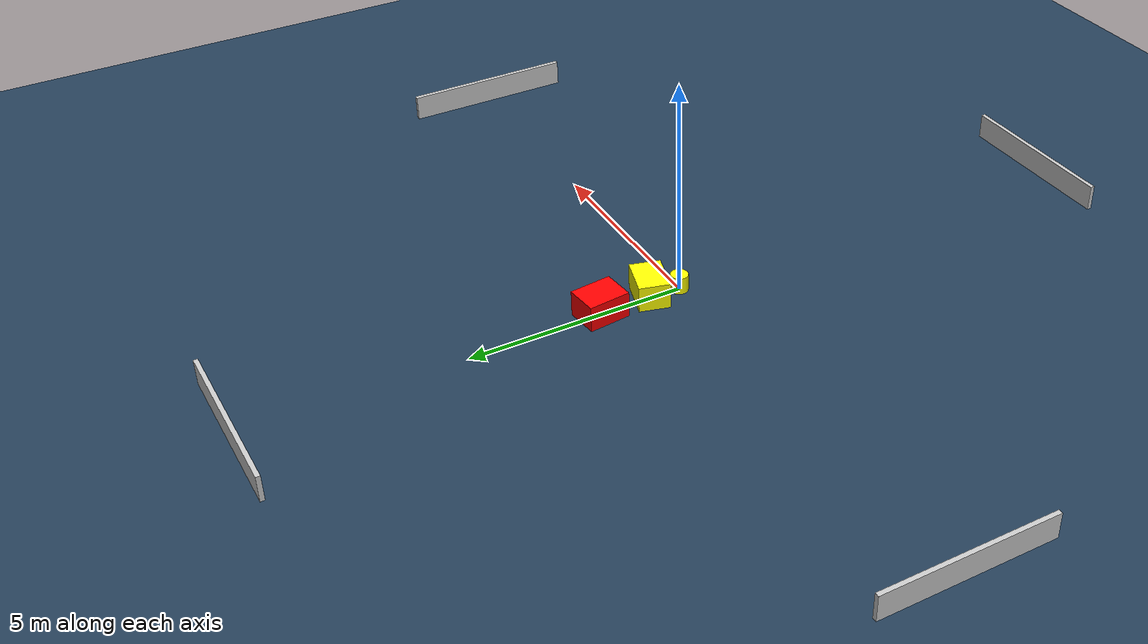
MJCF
<?xml version="1.0" ?>
<mujoco model="generated_environment">
  <option timestep="0.01" integrator="RK4" cone="elliptic"/>
  <default>
    <geom density="1"/>
  </default>
  <asset>
    <texture builtin="gradient" height="3072" name="skybox" rgb1="0.3 0.5 0.7" rgb2="0 0 0" type="skybox" width="512"/>
    <texture builtin="checker" height="300" name="groundplane" rgb1="0.2 0.3 0.4" rgb2="0.1 0.2 0.3" type="2d" width="300"/>
    <material name="groundplane" reflectance="0.2" texrepeat="5 5" texture="groundplane"/>
  </asset>
  <worldbody>
    <light dir="0 0 -1" directional="true" pos="0 0 1.5"/>
    <geom condim="3" friction="0.5 0.005 0.001" material="groundplane" name="floor" pos="0 0 0" size="0 0 0.05" type="plane"/>
    <body name="walls">
      <geom name="wall_1" condim="4" pos="-10.0 0.0 0.3" rgba="0.800000011920929 0.800000011920929 0.800000011920929 1.0" size="0.05 2.0 0.3" type="box"/>
      <geom name="wall_2" condim="4" pos="10.0 0.0 0.3" rgba="0.800000011920929 0.800000011920929 0.800000011920929 1.0" size="0.05 2.0 0.3" type="box"/>
      <geom name="wall_3" condim="4" pos="0.0 -10.0 0.3" rgba="0.800000011920929 0.800000011920929 0.800000011920929 1.0" size="2.0 0.05 0.3" type="box"/>
      <geom name="wall_4" condim="4" pos="0.0 10.0 0.3" rgba="0.800000011920929 0.800000011920929 0.800000011920929 1.0" size="2.0 0.05 0.3" type="box"/>
    </body>
    <body name="robot">
      <joint name="joint_x" type="slide" pos="0 0 0" axis="1 0 0"/>
      <joint name="joint_y" type="slide" pos="0 0 0" axis="0 1 0"/>
      <geom name="robot" type="cylinder" pos="0.0 0.0 0.2" size="0.2 0.2 0.0" mass="5.0" friction="1.0 0.005 0.0001" condim="4" rgba="1.0 1.0 0.0 1.0"/>
    </body>
    <body name="obstacle_1_movable">
      <geom name="obstacle_1_movable" condim="4" pos="0.059690773735811005 0.7047995493426475 0.3" euler="0 0 254.45393549664297" friction="0.0 0.005 0.001" rgba="1.0 1.0 0.0 1.0" size="0.3531981453756863 0.4753150302335835 0.3" type="box" mass="0.1"/>
      <joint type="free"/>
    </body>
    <body name="obstacle_2_static">
      <geom name="obstacle_2_static" condim="4" pos="0.008207439099814981 1.9380574828540733 0.3" euler="0 0 6.237008837347147" friction="0.0 0.005 0.001" rgba="1.0 0.0 0.0 1.0" size="0.3801360928566318 0.4851189729574055 0.3" type="box"/>
    </body>
  </worldbody>
  <actuator>
    <motor name="actuator_x" joint="joint_x" gear="1" ctrlrange="-1 1"/>
    <motor name="actuator_y" joint="joint_y" gear="1" ctrlrange="-1 1"/>
  </actuator>
</mujoco>
